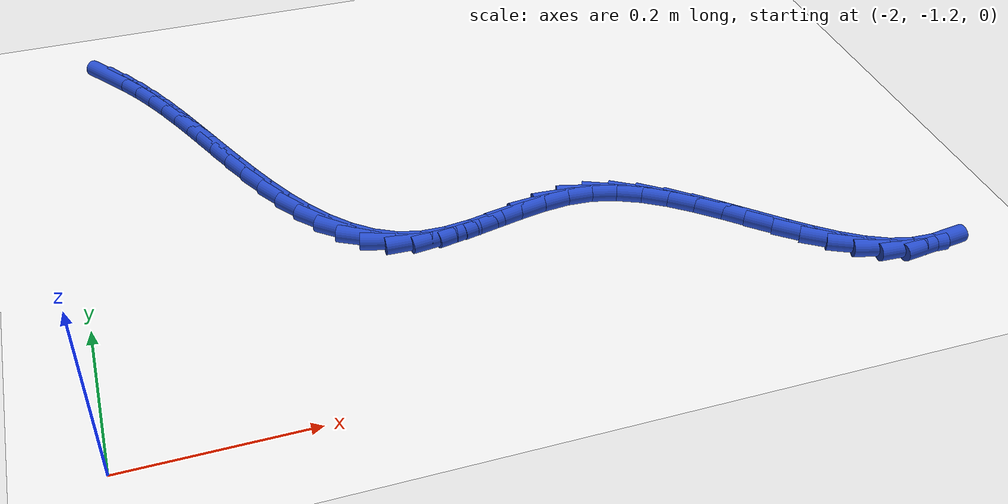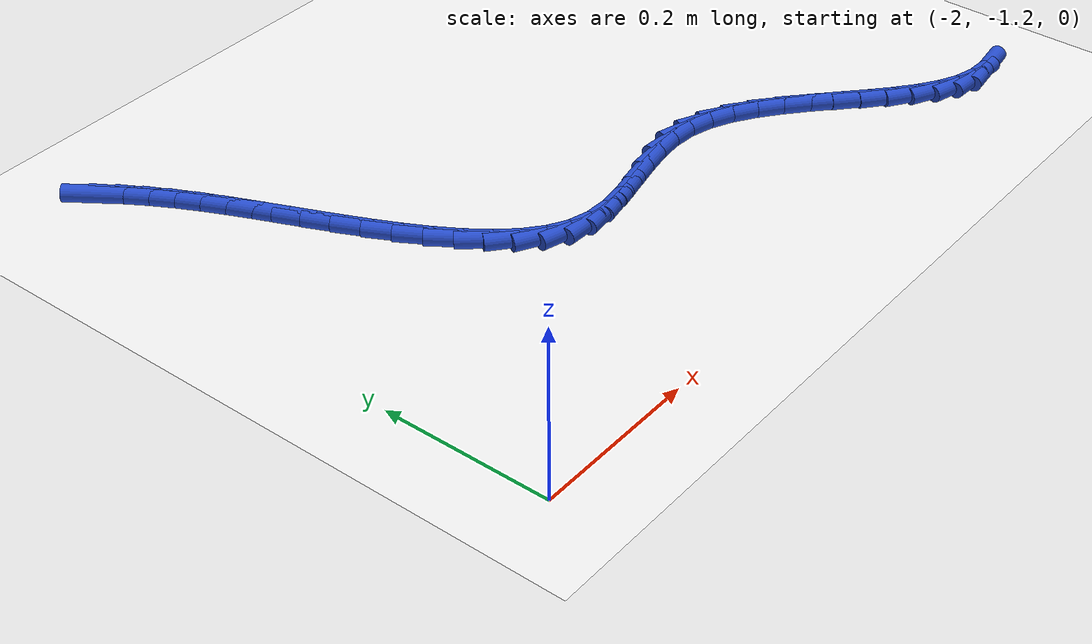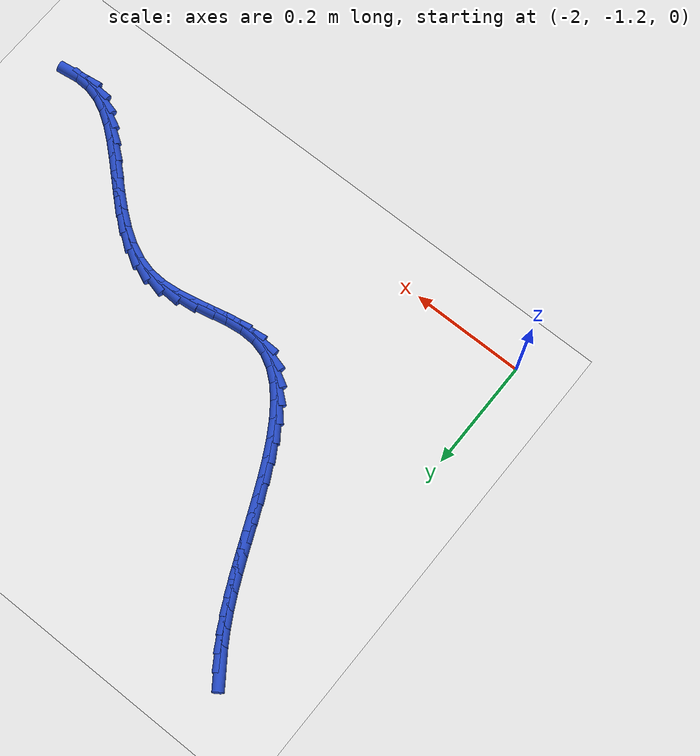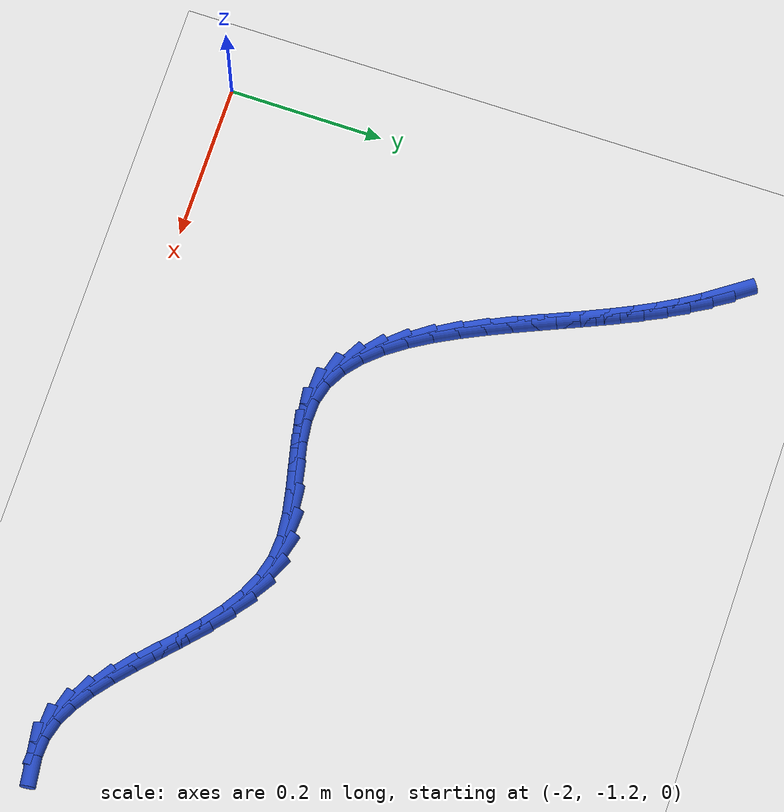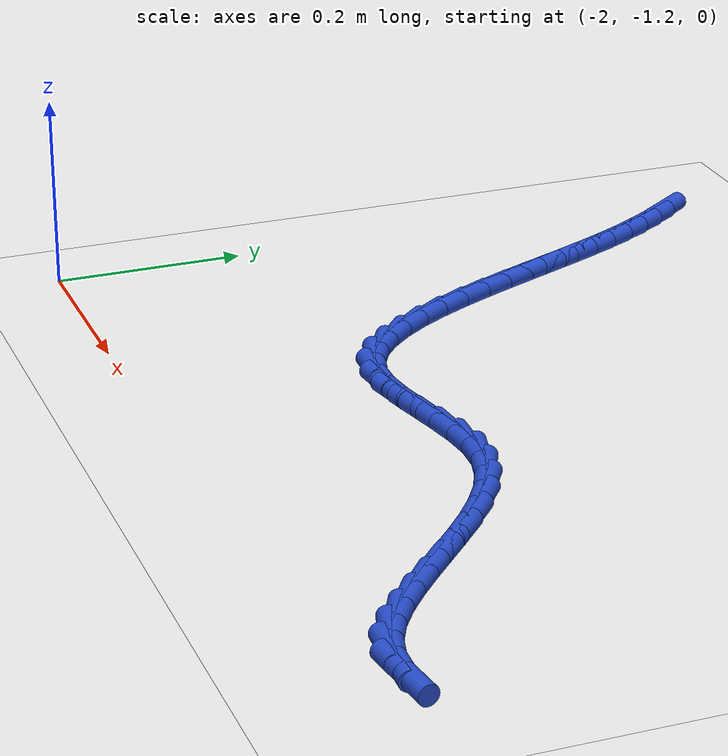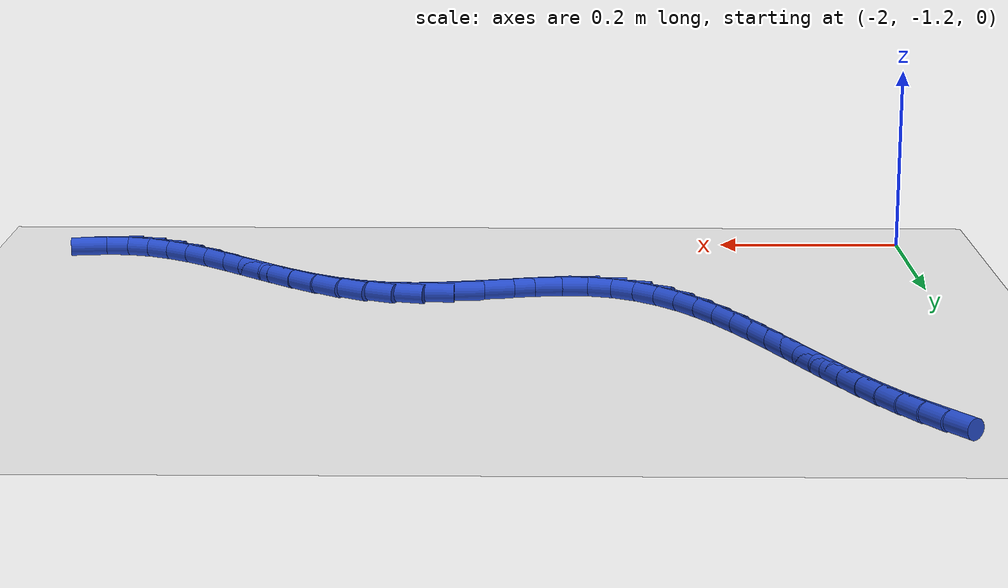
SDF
<sdf version="1.6">
 <world name="default">
  <model name="ground_plane">
   <static>1</static>
   <link name="link">
    <collision name="collision">
     <geometry><plane><normal>0 0 1</normal><size>100 100</size></plane></geometry>
     <surface><friction><ode><mu>100</mu><mu2>50</mu2></ode></friction></surface>
    </collision>
    <visual name="visual">
     <cast_shadows>0</cast_shadows>
     <geometry><plane><normal>0 0 1</normal><size>100 100</size></plane></geometry>
     <material>
      <script><uri>file://media/materials/scripts/gazebo.material</uri><name>Gazebo/WhiteGlow</name></script>
     </material>
    </visual>
   </link>
  </model>
  <model name="line">
   <link name="link_134">
    <pose>-1.9354827531212495 -0.5251198196498033 0.01 0 1.57 -0.9594351920762604</pose>
    <collision name="collision">
     <geometry><cylinder><radius>0.01</radius><length>0.08</length></cylinder></geometry>
    </collision>
    <visual name="visual">
     <material>
      <script><name>Gazebo/Blue</name><uri>file://media/materials/scripts/gazebo.material</uri></script>
     </material>
     <geometry><cylinder><radius>0.01</radius><length>0.08</length></cylinder></geometry>
    </visual>
   </link>
   <link name="link_135">
    <pose>-1.918741766358265 -0.5490032101844541 0.01 0 1.57 -1.0143342199259304</pose>
    <collision name="collision">
     <geometry><cylinder><radius>0.01</radius><length>0.08</length></cylinder></geometry>
    </collision>
    <visual name="visual">
     <material>
      <script><name>Gazebo/Blue</name><uri>file://media/materials/scripts/gazebo.material</uri></script>
     </material>
     <geometry><cylinder><radius>0.01</radius><length>0.08</length></cylinder></geometry>
    </visual>
   </link>
   <link name="link_136">
    <pose>-1.9034681046098119 -0.5735576769820947 0.01 0 1.57 -1.0616615407542194</pose>
    <collision name="collision">
     <geometry><cylinder><radius>0.01</radius><length>0.08</length></cylinder></geometry>
    </collision>
    <visual name="visual">
     <material>
      <script><name>Gazebo/Blue</name><uri>file://media/materials/scripts/gazebo.material</uri></script>
     </material>
     <geometry><cylinder><radius>0.01</radius><length>0.08</length></cylinder></geometry>
    </visual>
   </link>
   <link name="link_137">
    <pose>-1.8893806163226612 -0.5987939708737772 0.01 0 1.57 -1.100444335877026</pose>
    <collision name="collision">
     <geometry><cylinder><radius>0.01</radius><length>0.08</length></cylinder></geometry>
    </collision>
    <visual name="visual">
     <material>
      <script><name>Gazebo/Blue</name><uri>file://media/materials/scripts/gazebo.material</uri></script>
     </material>
     <geometry><cylinder><radius>0.01</radius><length>0.08</length></cylinder></geometry>
    </visual>
   </link>
   <link name="link_138">
    <pose>-1.8761981499435865 -0.6247228426905534 0.01 0 1.57 -1.1301610561401045</pose>
    <collision name="collision">
     <geometry><cylinder><radius>0.01</radius><length>0.08</length></cylinder></geometry>
    </collision>
    <visual name="visual">
     <material>
      <script><name>Gazebo/Blue</name><uri>file://media/materials/scripts/gazebo.material</uri></script>
     </material>
     <geometry><cylinder><radius>0.01</radius><length>0.08</length></cylinder></geometry>
    </visual>
   </link>
   <link name="link_139">
    <pose>-1.8636395539193606 -0.6513550432634749 0.01 0 1.57 -1.1506811109154504</pose>
    <collision name="collision">
     <geometry><cylinder><radius>0.01</radius><length>0.08</length></cylinder></geometry>
    </collision>
    <visual name="visual">
     <material>
      <script><name>Gazebo/Blue</name><uri>file://media/materials/scripts/gazebo.material</uri></script>
     </material>
     <geometry><cylinder><radius>0.01</radius><length>0.08</length></cylinder></geometry>
    </visual>
   </link>
   <link name="link_140">
    <pose>-1.851423676696757 -0.6787013234235942 0.01 0 1.57 -1.1621835950069916</pose>
    <collision name="collision">
     <geometry><cylinder><radius>0.01</radius><length>0.08</length></cylinder></geometry>
    </collision>
    <visual name="visual">
     <material>
      <script><name>Gazebo/Blue</name><uri>file://media/materials/scripts/gazebo.material</uri></script>
     </material>
     <geometry><cylinder><radius>0.01</radius><length>0.08</length></cylinder></geometry>
    </visual>
   </link>
   <link name="link_141">
    <pose>-1.8392693667225477 -0.7067724340019613 0.01 0 1.57 -1.1650787012374708</pose>
    <collision name="collision">
     <geometry><cylinder><radius>0.01</radius><length>0.08</length></cylinder></geometry>
    </collision>
    <visual name="visual">
     <material>
      <script><name>Gazebo/Blue</name><uri>file://media/materials/scripts/gazebo.material</uri></script>
     </material>
     <geometry><cylinder><radius>0.01</radius><length>0.08</length></cylinder></geometry>
    </visual>
   </link>
   <link name="link_142">
    <pose>-1.8268954724435058 -0.7355791258296283 0.01 0 1.57 -1.1599438424894948</pose>
    <collision name="collision">
     <geometry><cylinder><radius>0.01</radius><length>0.08</length></cylinder></geometry>
    </collision>
    <visual name="visual">
     <material>
      <script><name>Gazebo/Blue</name><uri>file://media/materials/scripts/gazebo.material</uri></script>
     </material>
     <geometry><cylinder><radius>0.01</radius><length>0.08</length></cylinder></geometry>
    </visual>
   </link>
   <link name="link_143">
    <pose>-1.8140208423064048 -0.7651321497376475 0.01 0 1.57 -1.1472882669916782</pose>
    <collision name="collision">
     <geometry><cylinder><radius>0.01</radius><length>0.08</length></cylinder></geometry>
    </collision>
    <visual name="visual">
     <material>
      <script><name>Gazebo/Blue</name><uri>file://media/materials/scripts/gazebo.material</uri></script>
     </material>
     <geometry><cylinder><radius>0.01</radius><length>0.08</length></cylinder></geometry>
    </visual>
   </link>
   <link name="link_144">
    <pose>-1.800367487672015 -0.7954199793782759 0.01 0 1.57 -1.123839037581941</pose>
    <collision name="collision">
     <geometry><cylinder><radius>0.01</radius><length>0.08</length></cylinder></geometry>
    </collision>
    <visual name="visual">
     <material>
      <script><name>Gazebo/Blue</name><uri>file://media/materials/scripts/gazebo.material</uri></script>
     </material>
     <geometry><cylinder><radius>0.01</radius><length>0.08</length></cylinder></geometry>
    </visual>
   </link>
   <link name="link_145">
    <pose>-1.785722153933934 -0.8259751507387197 0.01 0 1.57 -1.0853195782472616</pose>
    <collision name="collision">
     <geometry><cylinder><radius>0.01</radius><length>0.08</length></cylinder></geometry>
    </collision>
    <visual name="visual">
     <material>
      <script><name>Gazebo/Blue</name><uri>file://media/materials/scripts/gazebo.material</uri></script>
     </material>
     <geometry><cylinder><radius>0.01</radius><length>0.08</length></cylinder></geometry>
    </visual>
   </link>
   <link name="link_146">
    <pose>-1.7699321589762 -0.8559035729044819 0.01 0 1.57 -1.0290750437611518</pose>
    <collision name="collision">
     <geometry><cylinder><radius>0.01</radius><length>0.08</length></cylinder></geometry>
    </collision>
    <visual name="visual">
     <material>
      <script><name>Gazebo/Blue</name><uri>file://media/materials/scripts/gazebo.material</uri></script>
     </material>
     <geometry><cylinder><radius>0.01</radius><length>0.08</length></cylinder></geometry>
    </visual>
   </link>
   <link name="link_147">
    <pose>-1.7528471501362508 -0.8842947480496387 0.01 0 1.57 -0.9505633356266355</pose>
    <collision name="collision">
     <geometry><cylinder><radius>0.01</radius><length>0.08</length></cylinder></geometry>
    </collision>
    <visual name="visual">
     <material>
      <script><name>Gazebo/Blue</name><uri>file://media/materials/scripts/gazebo.material</uri></script>
     </material>
     <geometry><cylinder><radius>0.01</radius><length>0.08</length></cylinder></geometry>
    </visual>
   </link>
   <link name="link_148">
    <pose>-1.734316774751521 -0.9102381783482669 0.01 0 1.57 -0.8429094606010933</pose>
    <collision name="collision">
     <geometry><cylinder><radius>0.01</radius><length>0.08</length></cylinder></geometry>
    </collision>
    <visual name="visual">
     <material>
      <script><name>Gazebo/Blue</name><uri>file://media/materials/scripts/gazebo.material</uri></script>
     </material>
     <geometry><cylinder><radius>0.01</radius><length>0.08</length></cylinder></geometry>
    </visual>
   </link>
   <link name="link_149">
    <pose>-1.714190680159449 -0.932823365974442 0.01 0 1.57 -0.6971521569785535</pose>
    <collision name="collision">
     <geometry><cylinder><radius>0.01</radius><length>0.08</length></cylinder></geometry>
    </collision>
    <visual name="visual">
     <material>
      <script><name>Gazebo/Blue</name><uri>file://media/materials/scripts/gazebo.material</uri></script>
     </material>
     <geometry><cylinder><radius>0.01</radius><length>0.08</length></cylinder></geometry>
    </visual>
   </link>
   <link name="link_150">
    <pose>-1.692318513697471 -0.9511398131022406 0.01 0 1.57 -0.5049237280389975</pose>
    <collision name="collision">
     <geometry><cylinder><radius>0.01</radius><length>0.08</length></cylinder></geometry>
    </collision>
    <visual name="visual">
     <material>
      <script><name>Gazebo/Blue</name><uri>file://media/materials/scripts/gazebo.material</uri></script>
     </material>
     <geometry><cylinder><radius>0.01</radius><length>0.08</length></cylinder></geometry>
    </visual>
   </link>
   <link name="link_151">
    <pose>-1.6685499227030225 -0.9642770219057388 0.01 0 1.57 -0.26679511309546194</pose>
    <collision name="collision">
     <geometry><cylinder><radius>0.01</radius><length>0.08</length></cylinder></geometry>
    </collision>
    <visual name="visual">
     <material>
      <script><name>Gazebo/Blue</name><uri>file://media/materials/scripts/gazebo.material</uri></script>
     </material>
     <geometry><cylinder><radius>0.01</radius><length>0.08</length></cylinder></geometry>
    </visual>
   </link>
   <link name="link_152">
    <pose>-1.642736367968497 -0.9713321456229419 0.01 0 1.57 -0.034026178555946085</pose>
    <collision name="collision">
     <geometry><cylinder><radius>0.01</radius><length>0.08</length></cylinder></geometry>
    </collision>
    <visual name="visual">
     <material>
      <script><name>Gazebo/Blue</name><uri>file://media/materials/scripts/gazebo.material</uri></script>
     </material>
     <geometry><cylinder><radius>0.01</radius><length>0.08</length></cylinder></geometry>
    </visual>
   </link>
   <link name="link_153">
    <pose>-1.614936958981414 -0.9722784184972738 0.01 0 1.57 0.11924316272203428</pose>
    <collision name="collision">
     <geometry><cylinder><radius>0.01</radius><length>0.08</length></cylinder></geometry>
    </collision>
    <visual name="visual">
     <material>
      <script><name>Gazebo/Blue</name><uri>file://media/materials/scripts/gazebo.material</uri></script>
     </material>
     <geometry><cylinder><radius>0.01</radius><length>0.08</length></cylinder></geometry>
    </visual>
   </link>
   <link name="link_154">
    <pose>-1.5856079046499478 -0.968764458571145 0.01 0 1.57 0.19945769795835236</pose>
    <collision name="collision">
     <geometry><cylinder><radius>0.01</radius><length>0.08</length></cylinder></geometry>
    </collision>
    <visual name="visual">
     <material>
      <script><name>Gazebo/Blue</name><uri>file://media/materials/scripts/gazebo.material</uri></script>
     </material>
     <geometry><cylinder><radius>0.01</radius><length>0.08</length></cylinder></geometry>
    </visual>
   </link>
   <link name="link_155">
    <pose>-1.5552501865345734 -0.9626277821134577 0.01 0 1.57 0.22047177986577224</pose>
    <collision name="collision">
     <geometry><cylinder><radius>0.01</radius><length>0.08</length></cylinder></geometry>
    </collision>
    <visual name="visual">
     <material>
      <script><name>Gazebo/Blue</name><uri>file://media/materials/scripts/gazebo.material</uri></script>
     </material>
     <geometry><cylinder><radius>0.01</radius><length>0.08</length></cylinder></geometry>
    </visual>
   </link>
   <link name="link_156">
    <pose>-1.5243647861957645 -0.9557059053931131 0.01 0 1.57 0.18764521877907608</pose>
    <collision name="collision">
     <geometry><cylinder><radius>0.01</radius><length>0.08</length></cylinder></geometry>
    </collision>
    <visual name="visual">
     <material>
      <script><name>Gazebo/Blue</name><uri>file://media/materials/scripts/gazebo.material</uri></script>
     </material>
     <geometry><cylinder><radius>0.01</radius><length>0.08</length></cylinder></geometry>
    </visual>
   </link>
   <link name="link_157">
    <pose>-1.4934526851939958 -0.9498363446790128 0.01 0 1.57 0.09758464968539596</pose>
    <collision name="collision">
     <geometry><cylinder><radius>0.01</radius><length>0.08</length></cylinder></geometry>
    </collision>
    <visual name="visual">
     <material>
      <script><name>Gazebo/Blue</name><uri>file://media/materials/scripts/gazebo.material</uri></script>
     </material>
     <geometry><cylinder><radius>0.01</radius><length>0.08</length></cylinder></geometry>
    </visual>
   </link>
   <link name="link_158">
    <pose>-1.4630148650897428 -0.9468566162400586 0.01 0 1.57 -0.05912467348432856</pose>
    <collision name="collision">
     <geometry><cylinder><radius>0.01</radius><length>0.08</length></cylinder></geometry>
    </collision>
    <visual name="visual">
     <material>
      <script><name>Gazebo/Blue</name><uri>file://media/materials/scripts/gazebo.material</uri></script>
     </material>
     <geometry><cylinder><radius>0.01</radius><length>0.08</length></cylinder></geometry>
    </visual>
   </link>
   <link name="link_159">
    <pose>-1.4335514613062073 -0.9486006630794817 0.01 0 1.57 -0.26027028582841905</pose>
    <collision name="collision">
     <geometry><cylinder><radius>0.01</radius><length>0.08</length></cylinder></geometry>
    </collision>
    <visual name="visual">
     <material>
      <script><name>Gazebo/Blue</name><uri>file://media/materials/scripts/gazebo.material</uri></script>
     </material>
     <geometry><cylinder><radius>0.01</radius><length>0.08</length></cylinder></geometry>
    </visual>
   </link>
   <link name="link_160">
    <pose>-1.4053737115977927 -0.9561047071005809 0.01 0 1.57 -0.4334902579521153</pose>
    <collision name="collision">
     <geometry><cylinder><radius>0.01</radius><length>0.08</length></cylinder></geometry>
    </collision>
    <visual name="visual">
     <material>
      <script><name>Gazebo/Blue</name><uri>file://media/materials/scripts/gazebo.material</uri></script>
     </material>
     <geometry><cylinder><radius>0.01</radius><length>0.08</length></cylinder></geometry>
    </visual>
   </link>
   <link name="link_161">
    <pose>-1.3783666258552338 -0.9686049958481143 0.01 0 1.57 -0.564931136658966</pose>
    <collision name="collision">
     <geometry><cylinder><radius>0.01</radius><length>0.08</length></cylinder></geometry>
    </collision>
    <visual name="visual">
     <material>
      <script><name>Gazebo/Blue</name><uri>file://media/materials/scripts/gazebo.material</uri></script>
     </material>
     <geometry><cylinder><radius>0.01</radius><length>0.08</length></cylinder></geometry>
    </visual>
   </link>
   <link name="link_162">
    <pose>-1.3523567956164686 -0.9850910742317813 0.01 0 1.57 -0.6578765931216645</pose>
    <collision name="collision">
     <geometry><cylinder><radius>0.01</radius><length>0.08</length></cylinder></geometry>
    </collision>
    <visual name="visual">
     <material>
      <script><name>Gazebo/Blue</name><uri>file://media/materials/scripts/gazebo.material</uri></script>
     </material>
     <geometry><cylinder><radius>0.01</radius><length>0.08</length></cylinder></geometry>
    </visual>
   </link>
   <link name="link_163">
    <pose>-1.3271708124194352 -1.0045524871612794 0.01 0 1.57 -0.7178525118405582</pose>
    <collision name="collision">
     <geometry><cylinder><radius>0.01</radius><length>0.08</length></cylinder></geometry>
    </collision>
    <visual name="visual">
     <material>
      <script><name>Gazebo/Blue</name><uri>file://media/materials/scripts/gazebo.material</uri></script>
     </material>
     <geometry><cylinder><radius>0.01</radius><length>0.08</length></cylinder></geometry>
    </visual>
   </link>
   <link name="link_164">
    <pose>-1.3026352678020712 -1.0259787795463076 0.01 0 1.57 -0.7492849834909154</pose>
    <collision name="collision">
     <geometry><cylinder><radius>0.01</radius><length>0.08</length></cylinder></geometry>
    </collision>
    <visual name="visual">
     <material>
      <script><name>Gazebo/Blue</name><uri>file://media/materials/scripts/gazebo.material</uri></script>
     </material>
     <geometry><cylinder><radius>0.01</radius><length>0.08</length></cylinder></geometry>
    </visual>
   </link>
   <link name="link_165">
    <pose>-1.2785767533023147 -1.048359496296565 0.01 0 1.57 -0.7543703662746312</pose>
    <collision name="collision">
     <geometry><cylinder><radius>0.01</radius><length>0.08</length></cylinder></geometry>
    </collision>
    <visual name="visual">
     <material>
      <script><name>Gazebo/Blue</name><uri>file://media/materials/scripts/gazebo.material</uri></script>
     </material>
     <geometry><cylinder><radius>0.01</radius><length>0.08</length></cylinder></geometry>
    </visual>
   </link>
   <link name="link_166">
    <pose>-1.2548218604581025 -1.0706841823217503 0.01 0 1.57 -0.7327212815882063</pose>
    <collision name="collision">
     <geometry><cylinder><radius>0.01</radius><length>0.08</length></cylinder></geometry>
    </collision>
    <visual name="visual">
     <material>
      <script><name>Gazebo/Blue</name><uri>file://media/materials/scripts/gazebo.material</uri></script>
     </material>
     <geometry><cylinder><radius>0.01</radius><length>0.08</length></cylinder></geometry>
    </visual>
   </link>
   <link name="link_167">
    <pose>-1.231197180807374 -1.0919423825315613 0.01 0 1.57 -0.6810710582042656</pose>
    <collision name="collision">
     <geometry><cylinder><radius>0.01</radius><length>0.08</length></cylinder></geometry>
    </collision>
    <visual name="visual">
     <material>
      <script><name>Gazebo/Blue</name><uri>file://media/materials/scripts/gazebo.material</uri></script>
     </material>
     <geometry><cylinder><radius>0.01</radius><length>0.08</length></cylinder></geometry>
    </visual>
   </link>
   <link name="link_168">
    <pose>-1.207529305888067 -1.1111236418356973 0.01 0 1.57 -0.5929392630332252</pose>
    <collision name="collision">
     <geometry><cylinder><radius>0.01</radius><length>0.08</length></cylinder></geometry>
    </collision>
    <visual name="visual">
     <material>
      <script><name>Gazebo/Blue</name><uri>file://media/materials/scripts/gazebo.material</uri></script>
     </material>
     <geometry><cylinder><radius>0.01</radius><length>0.08</length></cylinder></geometry>
    </visual>
   </link>
   <link name="link_169">
    <pose>-1.1836448272381184 -1.1272175051438564 0.01 0 1.57 -0.4589822464116618</pose>
    <collision name="collision">
     <geometry><cylinder><radius>0.01</radius><length>0.08</length></cylinder></geometry>
    </collision>
    <visual name="visual">
     <material>
      <script><name>Gazebo/Blue</name><uri>file://media/materials/scripts/gazebo.material</uri></script>
     </material>
     <geometry><cylinder><radius>0.01</radius><length>0.08</length></cylinder></geometry>
    </visual>
   </link>
   <link name="link_170">
    <pose>-1.1593703363954657 -1.1392135173657385 0.01 0 1.57 -0.27078289811540435</pose>
    <collision name="collision">
     <geometry><cylinder><radius>0.01</radius><length>0.08</length></cylinder></geometry>
    </collision>
    <visual name="visual">
     <material>
      <script><name>Gazebo/Blue</name><uri>file://media/materials/scripts/gazebo.material</uri></script>
     </material>
     <geometry><cylinder><radius>0.01</radius><length>0.08</length></cylinder></geometry>
    </visual>
   </link>
   <link name="link_171">
    <pose>-1.1345333679846026 -1.1461082891777645 0.01 0 1.57 -0.05429586109793999</pose>
    <collision name="collision">
     <geometry><cylinder><radius>0.01</radius><length>0.08</length></cylinder></geometry>
    </collision>
    <visual name="visual">
     <material>
      <script><name>Gazebo/Blue</name><uri>file://media/materials/scripts/gazebo.material</uri></script>
     </material>
     <geometry><cylinder><radius>0.01</radius><length>0.08</length></cylinder></geometry>
    </visual>
   </link>
   <link name="link_172">
    <pose>-1.1090409201144282 -1.1474937853536569 0.01 0 1.57 0.13306828336456789</pose>
    <collision name="collision">
     <geometry><cylinder><radius>0.01</radius><length>0.08</length></cylinder></geometry>
    </collision>
    <visual name="visual">
     <material>
      <script><name>Gazebo/Blue</name><uri>file://media/materials/scripts/gazebo.material</uri></script>
     </material>
     <geometry><cylinder><radius>0.01</radius><length>0.08</length></cylinder></geometry>
    </visual>
   </link>
  </model>
 </world>
</sdf>
